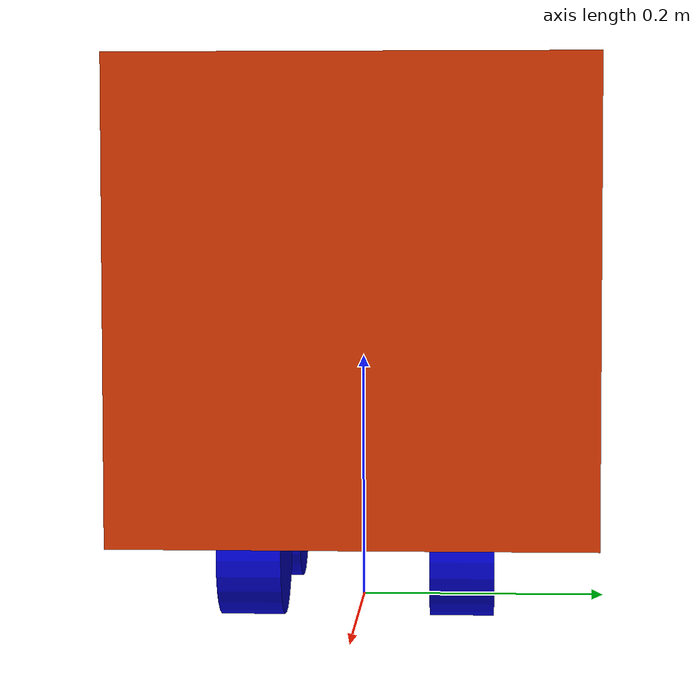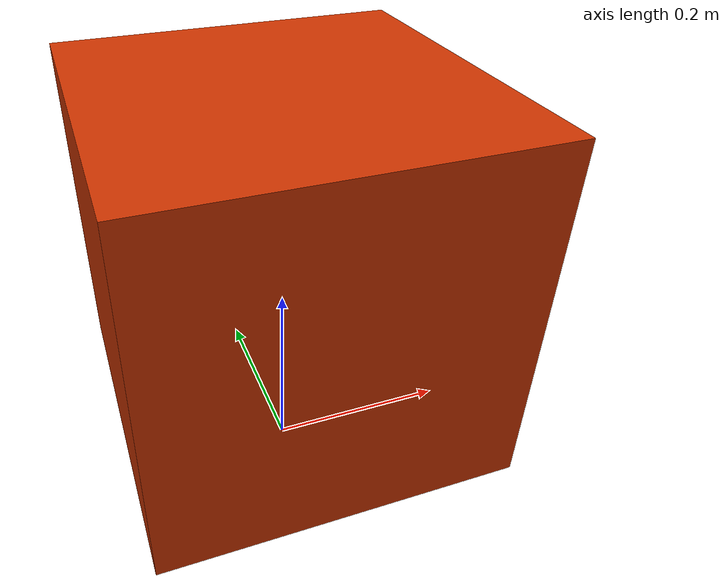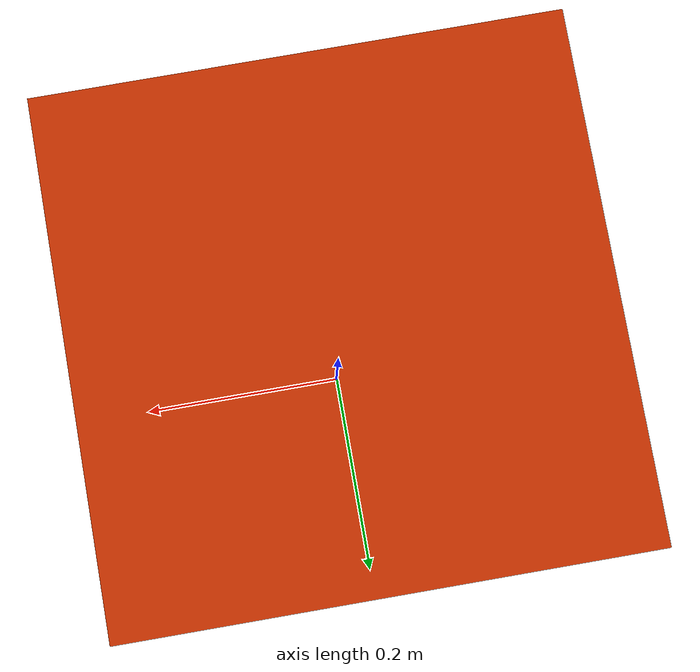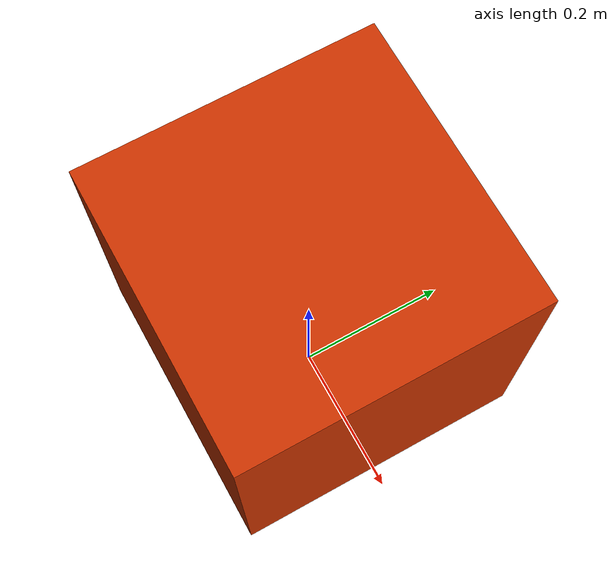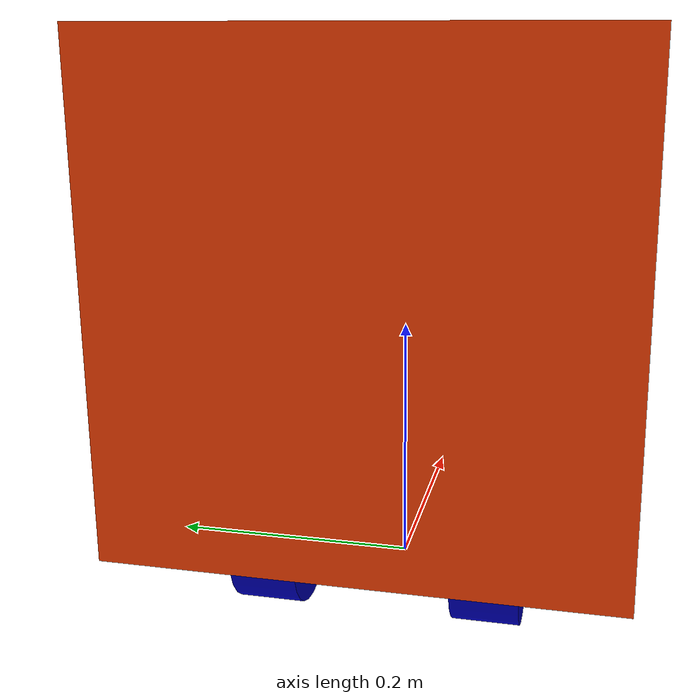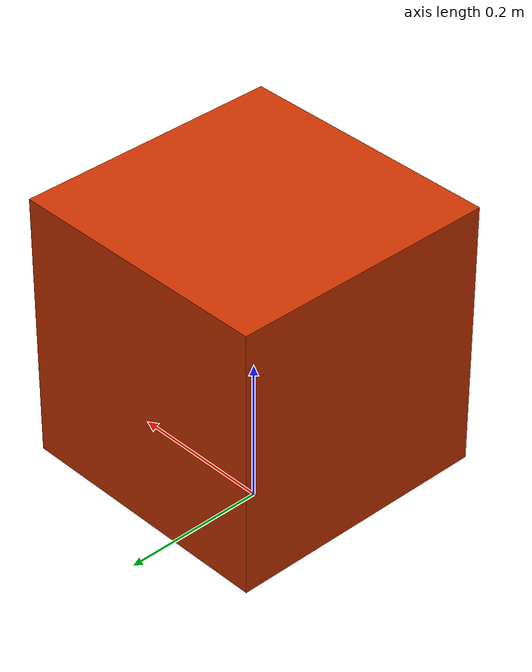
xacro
<?xml version="1.0"?>
<robot xmlns:xacro="http://www.ros.org/wiki/xacro" name="GisenCubeBase">
  <xacro:property name="pi" value="3.1415926535897931" />

  <xacro:property name="body_height" value="0.067" />
  <xacro:property name="wheel_x_dist" value="0.085" />
  <xacro:property name="wheel_y_dist" value="0.0825" />
  <xacro:property name="wheel_height" value="0.100" />
  <xacro:macro name="default_wheel_visual">
    <visual>
      <origin xyz="0 0 0" rpy="${pi / 2} 0 0" />
      <geometry>
        <cylinder radius="${wheel_height / 2}" length="0.050" />
      </geometry>
      <material name="blue">
        <color rgba="0 0 0.8 1" />
      </material>
    </visual>
  </xacro:macro>
  <xacro:macro name="default_inertial" params="mass origin_xyz">
    <inertial>
      <mass value="${mass}" />
      <origin xyz="${origin_xyz}" />
      <inertia ixx="1.0" ixy="0.0" ixz="0.0"
                         iyy="1.0" iyz="0.0"
                                   izz="1.0" />
    </inertial>
  </xacro:macro>

  <link name="base_footprint" />
  <gazebo reference="base_footprint">
    <material>Gazebo/Red</material>
  </gazebo>
  <joint name="footprint_to_base" type="fixed">
    <parent link="base_footprint" />
    <child link="base_link">base_link</child>
    <origin xyz="0 0 ${body_height}" rpy="0 0 0" />
  </joint>

  <link name="base_link" />
  <gazebo reference="base_link">
    <material>Gazebo/Red</material>
  </gazebo>
  <joint name="base_to_box" type="fixed">
    <parent link="base_link" />
    <child link="box_link">box_link</child>
    <origin xyz="0 0 ${0.37 / 2}" rpy="0 0 0" />
  </joint>

  <link name="box_link">
    <visual>
      <origin xyz="0 0 0" rpy="0 0 0" />
      <geometry>
        <box size="0.37 0.37 0.37" />
      </geometry>
      <material name="orange">
        <color rgba=".8 .2 0 1" />
      </material>
    </visual>
    <xacro:default_inertial mass="1.2" origin_xyz="0 0 0" />
  </link>
  <gazebo reference="box_link">
    <material>Gazebo/Orange</material>
  </gazebo>

  <joint name="wheel1_hinge" type="continuous">
    <parent link="base_link" />
    <child link="wheel1">wheel1</child>
    <origin xyz="${wheel_x_dist} ${wheel_y_dist} ${wheel_height / 2 - body_height}" rpy="0 0 0" />
    <axis xyz="0 1 0" />
    <limit effort="1" velocity="2.0" />
    <dynamics damping="0.3" friction="0.2" />
  </joint>
  <transmission name="trans1">
    <type>transmission_interface/SimpleTransmission</type>
    <joint name="wheel1_hinge">
      <hardwareInterface>EffortJointInterface</hardwareInterface>
    </joint>
    <actuator name="motor1">
      <hardwareInterface>EffortJointInterface</hardwareInterface>
      <mechanismReduction>64</mechanismReduction>
    </actuator>
  </transmission>

  <joint name="wheel2_hinge" type="continuous">
    <parent link="base_link" />
    <child link="wheel2">wheel2</child>
    <origin xyz="-${wheel_x_dist} ${wheel_y_dist} ${wheel_height / 2 - body_height}" rpy="0 0 0" />
    <axis xyz="0 1 0" />
    <limit effort="1" velocity="2.0" />
    <dynamics damping="0.3" friction="0.2" />
  </joint>
  <transmission name="trans2">
    <type>transmission_interface/SimpleTransmission</type>
    <joint name="wheel2_hinge">
      <hardwareInterface>EffortJointInterface</hardwareInterface>
    </joint>
    <actuator name="motor2">
      <hardwareInterface>EffortJointInterface</hardwareInterface>
      <mechanismReduction>64</mechanismReduction>
    </actuator>
  </transmission>

  <joint name="wheel3_hinge" type="continuous">
    <parent link="base_link" />
    <child link="wheel3">wheel3</child>
    <origin xyz="-${wheel_x_dist} -${wheel_y_dist} ${wheel_height / 2 - body_height}" rpy="0 0 0" />
    <axis xyz="0 -1 0" />
    <limit effort="1" velocity="2.0" />
    <dynamics damping="0.3" friction="0.2" />
  </joint>
  <transmission name="trans3">
    <type>transmission_interface/SimpleTransmission</type>
    <joint name="wheel3_hinge">
      <hardwareInterface>EffortJointInterface</hardwareInterface>
    </joint>
    <actuator name="motor3">
      <hardwareInterface>EffortJointInterface</hardwareInterface>
      <mechanismReduction>64</mechanismReduction>
    </actuator>
  </transmission>

  <joint name="wheel4_hinge" type="continuous">
    <parent link="base_link" />
    <child link="wheel4">wheel4</child>
    <origin xyz="${wheel_x_dist} -${wheel_y_dist} ${wheel_height / 2 - body_height}" rpy="0 0 0" />
    <axis xyz="0 -1 0" />
    <limit effort="1" velocity="2.0" />
    <dynamics damping="0.3" friction="0.2" />
  </joint>
  <transmission name="trans4">
    <type>transmission_interface/SimpleTransmission</type>
    <joint name="wheel4_hinge">
      <hardwareInterface>EffortJointInterface</hardwareInterface>
    </joint>
    <actuator name="motor4">
      <hardwareInterface>EffortJointInterface</hardwareInterface>
      <mechanismReduction>64</mechanismReduction>
    </actuator>
  </transmission>

  <link name="wheel1">
    <xacro:default_wheel_visual />

    <xacro:default_inertial mass="0.3085" origin_xyz="0 0 0" />
  </link>
  <gazebo reference="wheel1">
    <material>Gazebo/Blue</material>
  </gazebo>

  <link name="wheel2">
    <xacro:default_wheel_visual />

    <xacro:default_inertial mass="0.3085" origin_xyz="0 0 0" />
  </link>
  <gazebo reference="wheel2">
    <material>Gazebo/Blue</material>
  </gazebo>

  <link name="wheel3">
    <xacro:default_wheel_visual />

    <xacro:default_inertial mass="0.3085" origin_xyz="0 0 0" />
  </link>
  <gazebo reference="wheel3">
    <material>Gazebo/Blue</material>
  </gazebo>

  <link name="wheel4">
    <xacro:default_wheel_visual />

    <xacro:default_inertial mass="0.3085" origin_xyz="0 0 0" />
  </link>
  <gazebo reference="wheel4">
    <material>Gazebo/Blue</material>
  </gazebo>
<gazebo>
  <plugin name="gazebo_ros_control" filename="libgazebo_ros_control.so">
    <robotNamespace>/cube_base</robotNamespace>
  </plugin>
</gazebo>
</robot>
